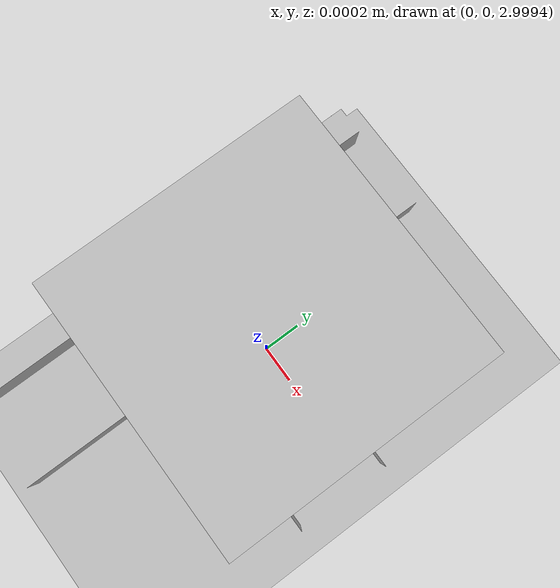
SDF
<sdf version='1.7'>
  <model name='cam_bot'>
    <link name='base_link'>
      <inertial>
        <pose>0 0 1.5 0 -0 0</pose>
        <mass>3.16999</mass>
        <inertia>
          <ixx>7.15331</ixx>
          <ixy>-3.61259e-07</ixy>
          <ixz>-4.7952e-07</ixz>
          <iyy>7.15337</iyy>
          <iyz>0.000442055</iyz>
          <izz>0.0363402</izz>
        </inertia>
      </inertial>
      <collision name='base_link_collision'>
        <pose>0 0 0 0 -0 0</pose>
        <geometry>
          <mesh>
            <scale>1 1 1</scale>
            <uri>model://rover_sim/arena/round_one_arena/final_arena_aruco.dae</uri>
          </mesh>
        </geometry>
      </collision>
      <collision name='base_link_fixed_joint_lump__camera_link_collision_1'>
        <pose>0 0 3 -3.14119 0 0</pose>
        <geometry>
          <box>
            <size>0.001 0.001 0.001</size>
          </box>
        </geometry>
        <surface>
          <contact>
            <ode/>
          </contact>
          <friction>
            <ode/>
          </friction>
        </surface>
      </collision>
      <visual name='base_link_visual'>
        <pose>0 0 0 0 -0 0</pose>
        <geometry>
          <mesh>
            <scale>1 1 1</scale>
            <uri>model://rover_sim/arena/round_one_arena/final_arena_aruco.dae</uri>
          </mesh>
        </geometry>
      </visual>
      <visual name='base_link_fixed_joint_lump__camera_link_visual_1'>
        <pose>0 0 3 -3.14119 0 0</pose>
        <geometry>
          <box>
            <size>0.001 0.001 0.001</size>
          </box>
        </geometry>
      </visual>
      <gravity>1</gravity>
      <velocity_decay/>
      <sensor name='camera' type='camera'>
        <update_rate>30</update_rate>
        <camera name='head'>
          <horizontal_fov>1.39626</horizontal_fov>
          <image>
            <width>640</width>
            <height>480</height>
            <format>R8G8B8</format>
          </image>
          <clip>
            <near>0.02</near>
            <far>300</far>
          </clip>
          <noise>
            <type>gaussian</type>
            <mean>0</mean>
            <stddev>0.007</stddev>
          </noise>
        </camera>
        <plugin name='camera_controller' filename='libgazebo_ros_camera.so'>
          <alwaysOn>1</alwaysOn>
          <updateRate>0.0</updateRate>
          <cameraName>usb_cam</cameraName>
          <imageTopicName>image_raw</imageTopicName>
          <cameraInfoTopicName>/camera/camera_info</cameraInfoTopicName>
          <frameName>camera_link</frameName>
          <hackBaseline>0.07</hackBaseline>
          <distortionK1>0.0</distortionK1>
          <distortionK2>0.0</distortionK2>
          <distortionK3>0.0</distortionK3>
          <distortionT1>0.0</distortionT1>
          <distortionT2>0.0</distortionT2>
        </plugin>
        <pose>0 0 3 -3.14119 -0 0</pose>
      </sensor>
    </link>
  </model>
</sdf>
